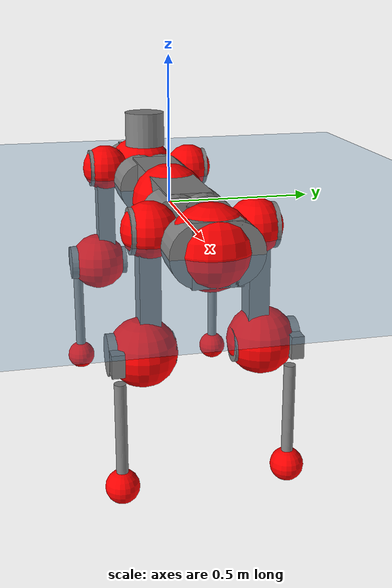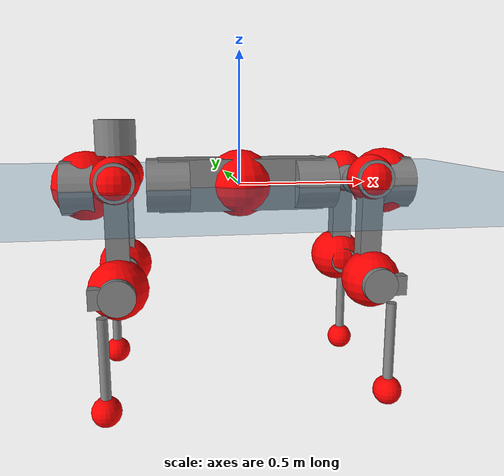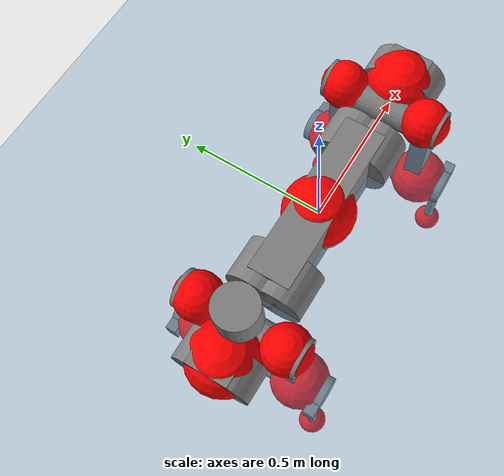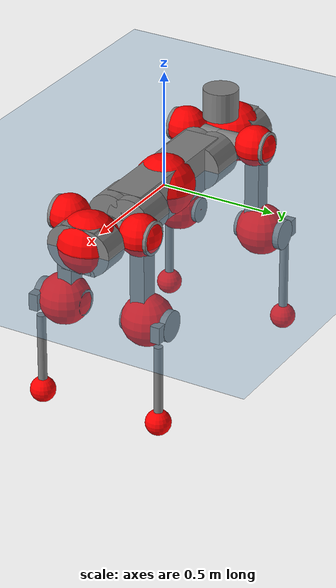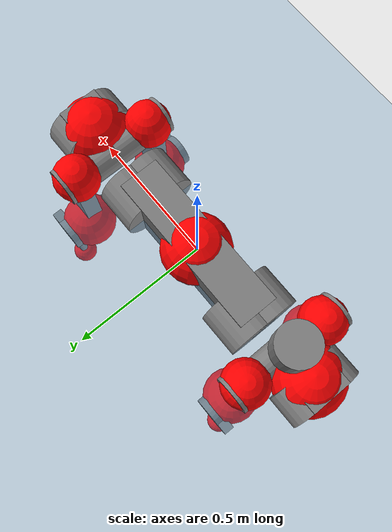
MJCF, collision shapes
<mujoco model="anymal_c">
  <compiler angle="radian" assetdir="assets" balanceinertia="true" inertiafromgeom="false"/>

  <option timestep="0.005" density="1.2" viscosity="2e-05"/>

  <size nkey="1"/>

  <visual>
    <quality shadowsize="8192"/>
    <map shadowclip="0.5"/>
  </visual>

  <default>
    <default class="/">
      <material specular="0" shininess="0.25"/>
      <geom contype="0" conaffinity="0" group="1" solref="-1000 -80"/>
      <site size="0.01 0.005 0.005" group="5"/>
      <general forcelimited="true" forcerange="-80 80" biastype="affine" gainprm="80" biasprm="0 -80 -2"/>
      <default class="anymal_c">
        <joint armature="0.01" damping="0.01" frictionloss="0.1"/>
        <default class="visual">
          <geom type="mesh" group="2"/>
          <default class="visual_zflip"/>
        </default>
        <default class="collision">
          <geom type="cylinder" group="3"/>
          <default class="foot">
            <geom size="0.03 0 0" type="sphere" condim="6" priority="1" friction="0.8 0.02 0.01" solimp="0.015 1 0.03"/>
          </default>
        </default>
      </default>
      <default class="reward_collision_sphere">
        <geom group="5" rgba="1 0 0 1"/>
      </default>
    </default>
  </default>

  <asset>
    <texture type="skybox" colorspace="auto" name="//unnamed_texture_0" builtin="gradient" rgb1="0.95 0.95 0.95" rgb2="0.95 0.95 0.95" width="100" height="600"/>
    <texture type="2d" colorspace="auto" name="texplane" builtin="checker" rgb1="0.345 0.575 0.748" rgb2="0.345 0.575 0.748" markrgb="1 1 1" width="512" height="512"/>
    <texture type="2d" colorspace="linear" name="base" file="base.png"/>
    <texture type="2d" colorspace="linear" name="top_shell" file="top_shell.png"/>
    <texture type="2d" colorspace="linear" name="bottom_shell" file="bottom_shell.png"/>
    <texture type="2d" colorspace="linear" name="remote" file="remote.png"/>
    <texture type="2d" colorspace="linear" name="hatch" file="hatch.png"/>
    <texture type="2d" colorspace="linear" name="handle" file="handle.png"/>
    <texture type="2d" colorspace="linear" name="face" file="face.png"/>
    <texture type="2d" colorspace="linear" name="battery" file="battery.png"/>
    <texture type="2d" colorspace="linear" name="lidar_cage" file="lidar_cage.png"/>
    <texture type="2d" colorspace="linear" name="depth_camera" file="depth_camera.png"/>
    <texture type="2d" colorspace="linear" name="wide_angle_camera" file="wide_angle_camera.png"/>
    <texture type="2d" colorspace="linear" name="lidar" file="lidar.png"/>
    <texture type="2d" colorspace="linear" name="drive" file="drive.png"/>
    <texture type="2d" colorspace="linear" name="hip_l" file="hip_l.png"/>
    <texture type="2d" colorspace="linear" name="shank_l" file="shank_l.png"/>
    <texture type="2d" colorspace="linear" name="foot" file="foot.png"/>
    <texture type="2d" colorspace="linear" name="thigh" file="thigh.png"/>
    <texture type="2d" colorspace="linear" name="shank_r" file="shank_r.png"/>
    <texture type="2d" colorspace="linear" name="hip_r" file="hip_r.png"/>
    <material name="MatPlane" class="/" texture="texplane" texuniform="true" texrepeat="2 2" specular="0.9" shininess="0.5"/>
    <material name="black_plastic" class="/" rgba="0.007 0.007 0.007 1"/>
    <material name="green" class="/" rgba="0.052 0.178 0.033 1"/>
    <material name="red" class="/" rgba="0.178 0.006 0.005 1"/>
    <material name="yellow" class="/" rgba="0.178 0.119 0.006 1"/>
    <material name="lwl" class="/" rgba="0.8 0.8 0.8 1"/>
    <material name="base" class="/" texture="base"/>
    <material name="top_shell" class="/" texture="top_shell"/>
    <material name="bottom_shell" class="/" texture="bottom_shell"/>
    <material name="hip_l" class="/" texture="hip_l"/>
    <material name="thigh" class="/" texture="thigh"/>
    <material name="shank_l" class="/" texture="shank_l"/>
    <material name="foot" class="/" texture="foot"/>
    <material name="hip_r" class="/" texture="hip_r"/>
    <material name="shank" class="/" texture="shank_r"/>
    <material name="hatch" class="/" texture="hatch"/>
    <material name="remote" class="/" texture="remote"/>
    <material name="handle" class="/" texture="handle"/>
    <material name="face" class="/" texture="face"/>
    <material name="depth_camera" class="/" texture="depth_camera"/>
    <material name="wide_angle_camera" class="/" texture="wide_angle_camera"/>
    <material name="battery" class="/" texture="battery"/>
    <material name="lidar_cage" class="/" texture="lidar_cage"/>
    <material name="lidar" class="/" texture="lidar"/>
    <material name="drive" class="/" texture="drive"/>
    <mesh name="base_0" class="/" file="base_0.obj"/>
    <mesh name="base_1" class="/" file="base_1.obj"/>
    <mesh name="base_2" class="/" file="base_2.obj"/>
    <mesh name="base_3" class="/" file="base_3.obj"/>
    <mesh name="base_4" class="/" file="base_4.obj"/>
    <mesh name="base_5" class="/" file="base_5.obj"/>
    <mesh name="top_shell" class="/" file="top_shell.obj"/>
    <mesh name="bottom_shell" class="/" file="bottom_shell.obj"/>
    <mesh name="remote" class="/" file="remote.obj"/>
    <mesh name="handle" class="/" file="handle.obj"/>
    <mesh name="face" class="/" file="face.obj"/>
    <mesh name="wide_angle_camera" class="/" file="wide_angle_camera.obj"/>
    <mesh name="depth_camera" class="/" file="depth_camera.obj"/>
    <mesh name="battery" class="/" file="battery.obj"/>
    <mesh name="lidar_cage" class="/" file="lidar_cage.obj"/>
    <mesh name="lidar" class="/" file="lidar.obj"/>
    <mesh name="drive" class="/" file="drive.obj"/>
    <mesh name="hip_l" class="/" file="hip_l.obj"/>
    <mesh name="thigh" class="/" file="thigh.obj"/>
    <mesh name="shank_l" class="/" file="shank_l.obj"/>
    <mesh name="foot" class="/" file="foot.obj"/>
    <mesh name="hip_r" class="/" file="hip_r.obj"/>
    <mesh name="hatch" class="/" file="hatch.obj"/>
    <mesh name="shank_r" class="/" file="shank_r.obj"/>
  </asset>

  <worldbody>
    <geom name="floor" class="/" size="100 100 0.125" type="plane" group="0" material="MatPlane"/>
    <light name="toplight_shadow" class="/" pos="0 0 5" dir="0.0990148 0.0990148 -0.990148" type="directional" ambient="0.04 0.04 0.04" diffuse="0.55 0.55 0.55" specular="0.12 0.12 0.12"/>
    <light name="toplight_fill" class="/" pos="0 0 5" dir="0.0990148 0.0990148 -0.990148" type="directional" castshadow="false" ambient="0.04 0.04 0.04" diffuse="0.3 0.3 0.3" specular="0.08 0.08 0.08"/>
    <body name="trunk" childclass="anymal_c" pos="0.00214166 0.000591073 0.00352342" quat="0.999999 0.000415375 -0.000309293 0.00094366">
      <inertial pos="0.00775182 0.00612012 0.0660027" quat="0.499896 0.5005 0.500107 0.499497" mass="24.2649" diaginertia="2.02138 0.0523473 0.814815"/>
      <joint name="//unnamed_joint_0" type="free" armature="0" damping="0" frictionloss="0"/>
      <geom name="//unnamed_geom_1" class="visual" material="green" mesh="base_0"/>
      <geom name="//unnamed_geom_2" class="visual" material="yellow" mesh="base_1"/>
      <geom name="//unnamed_geom_3" class="visual" material="red" mesh="base_2"/>
      <geom name="//unnamed_geom_4" class="visual" material="black_plastic" mesh="base_3"/>
      <geom name="//unnamed_geom_5" class="visual" material="lwl" mesh="base_4"/>
      <geom name="//unnamed_geom_6" class="visual" material="base" mesh="base_5"/>
      <geom name="trunk_1" class="collision" size="0.313697 0.0757201 0.0973544" type="box"/>
      <geom name="trunk_2" class="collision" size="0.0973544 0.0784243" pos="0.279786 0.0434537 0" quat="0.707107 0 0.707107 0"/>
      <geom name="trunk_3" class="collision" size="0.0973544 0.0784243" pos="-0.279786 0.0434537 0" quat="0.707107 0 0.707107 0"/>
      <geom name="trunk_4" class="collision" size="0.0973544 0.0784243" pos="0.279786 -0.0434537 0" quat="0.707107 0 0.707107 0"/>
      <geom name="trunk_5" class="collision" size="0.0973544 0.0784243" pos="-0.279786 -0.0434537 0" quat="0.707107 0 0.707107 0"/>
      <geom name="//unnamed_geom_12" class="visual" material="top_shell" mesh="top_shell"/>
      <geom name="//unnamed_geom_13" class="visual" material="bottom_shell" mesh="bottom_shell"/>
      <geom name="//unnamed_geom_14" class="visual" material="remote" mesh="remote"/>
      <geom name="//unnamed_geom_15" class="visual" material="handle" mesh="handle"/>
      <geom name="//unnamed_geom_16" class="visual" pos="0.5332 0 0" quat="1 0 0 0" material="face" mesh="face"/>
      <geom name="trunk_6" class="collision" size="0.0594943 0.0757201 0.0973544" pos="0.603951 0 0" type="box"/>
      <geom name="//unnamed_geom_18" class="collision" size="0.0973544 0.0594943" pos="0.603951 0.0434537 0" quat="0.707107 0 0.707107 0"/>
      <geom name="//unnamed_geom_19" class="collision" size="0.0973544 0.0594943" pos="0.603951 -0.0434537 0" quat="0.707107 0 0.707107 0"/>
      <geom name="//unnamed_geom_20" class="visual" pos="0.593855 0 -0.0394623" quat="0.965926 0 0.258819 0" material="depth_camera" mesh="depth_camera"/>
      <geom name="//unnamed_geom_21" class="visual" pos="0.659908 0 0.02003" material="wide_angle_camera" mesh="wide_angle_camera"/>
      <geom name="//unnamed_geom_22" class="visual_zflip" pos="-0.5332 0 0" quat="0 0 0 1" material="face" mesh="face"/>
      <geom name="trunk_7" class="collision" size="0.0594943 0.0757201 0.0973544" pos="-0.603951 0 0" quat="0 0 0 1" type="box"/>
      <geom name="//unnamed_geom_24" class="collision" size="0.0973544 0.0594943" pos="-0.603951 -0.0434537 0" quat="0 -0.707107 0 0.707107"/>
      <geom name="//unnamed_geom_25" class="collision" size="0.0973544 0.0594943" pos="-0.603951 0.0434537 0" quat="0 -0.707107 0 0.707107"/>
      <geom name="//unnamed_geom_26" class="visual" pos="-0.593855 0 -0.0394623" quat="0 -0.258819 0 0.965926" material="depth_camera" mesh="depth_camera"/>
      <geom name="//unnamed_geom_27" class="visual_zflip" pos="-0.659908 0 0.02003" quat="0 0 0 1" material="wide_angle_camera" mesh="wide_angle_camera"/>
      <geom name="//unnamed_geom_28" class="visual" material="battery" mesh="battery"/>
      <geom name="//unnamed_geom_29" class="visual" pos="0 0.0387319 0.0384767" quat="0.683013 -0.183013 0.183013 0.683013" material="depth_camera" mesh="depth_camera"/>
      <geom name="//unnamed_geom_30" class="visual" pos="0 -0.0387319 0.0384767" quat="0.683013 0.183013 0.183013 -0.683013" material="depth_camera" mesh="depth_camera"/>
      <geom name="//unnamed_geom_31" class="visual" pos="-0.468239 0 0.0983436" quat="1 0 0 0" material="lidar_cage" mesh="lidar_cage"/>
      <geom name="trunk_8" class="collision" size="0.0757201 0.0649029" pos="-0.468239 0 0.178624"/>
      <geom name="//unnamed_geom_33" class="visual" pos="-0.468239 -0.000261498 0.190265" quat="0.707107 0 0 -0.707107" material="lidar" mesh="lidar"/>
      <geom name="//unnamed_geom_34" class="visual" pos="0.385782 0.0648146 -1.23725e-08" quat="0.258819 0.965926 0 0" material="drive" mesh="drive"/>
      <geom name="//unnamed_geom_35" class="visual" pos="0.385782 -0.0648146 1.23725e-08" quat="0.258819 -0.965926 0 0" material="drive" mesh="drive"/>
      <geom name="//unnamed_geom_36" class="visual" pos="-0.385782 0.0648146 1.23725e-08" quat="0 0 0.965926 -0.258819" material="drive" mesh="drive"/>
      <geom name="//unnamed_geom_37" class="visual" pos="-0.385782 -0.0648146 -1.23725e-08" quat="0 0 -0.965926 -0.258819" material="drive" mesh="drive"/>
      <geom name="//unnamed_geom_38" class="visual" pos="0.149219 0 0.0976746" quat="1 0 0 0" material="hatch" mesh="hatch"/>
      <geom name="//unnamed_geom_39" class="reward_collision_sphere" size="0.129806"/>
      <geom name="//unnamed_geom_40" class="reward_collision_sphere" size="0.129806" pos="0.578867 0 0"/>
      <geom name="//unnamed_geom_41" class="reward_collision_sphere" size="0.129806" pos="-0.578867 0 0"/>
      <site name="imu" pos="0.360877 -0.00520474 0.0316585" size="0.0108172"/>
      <camera name="track" pos="0 -1.24153 0" quat="0.707107 0.707107 0 0" mode="trackcom"/>
      <camera name="ego_camera" pos="0.578867 0 -0.0535203" quat="-0.5 -0.5 0.5 0.5"/>
      <body name="LF_HIP" pos="0.388309 0.0645297 -0.00119322" quat="0.258411 0.966035 -6.61883e-05 0.000535692">
        <inertial pos="0.0666186 -0.00811327 -0.013328" quat="-0.131609 0.70509 -0.145282 0.681483" mass="3.72182" diaginertia="0.0219127 0.000438613 0.0138747"/>
        <joint name="LF_HAA" pos="0 0 0" axis="0.999789 0.0205522 -0.00054503" range="-0.761769 0.449622" armature="0.00684595" damping="0.0435404" frictionloss="0.0981489"/>
        <geom name="//unnamed_geom_42" class="visual" pos="0 -0.000727817 0.000119543" quat="0.258819 -0.965926 0 0" material="hip_l" mesh="hip_l"/>
        <geom name="//unnamed_geom_43" class="visual" pos="0.0770536 -0.0848579 -0.0542979" quat="0.183013 -0.683013 0.683013 0.183013" material="drive" mesh="drive"/>
        <geom name="//unnamed_geom_44" class="collision" size="0.0540858 0.0757201" pos="0.0770536 -0.00742425 -0.00923894" quat="-0.353553 -0.612372 0.612372 -0.353553"/>
        <body name="LF_THIGH" pos="0.0779456 -0.0472046 -0.0560435" quat="0.183895 -0.683584 0.682369 0.182395">
          <inertial pos="0.0392221 0.00017083 -0.335306" quat="0.993387 -0.00294982 -0.0822051 0.0801015" mass="3.85336" diaginertia="0.118132 0.00282157 0.0179481"/>
          <joint name="LF_HFE" pos="0 0 0" axis="0.99918 0.0296948 -0.0275122" stiffness="0.00523163" range="-3.16919 3.17762" armature="0.011768" damping="0.0037043" frictionloss="0.140919"/>
          <geom name="//unnamed_geom_45" class="visual" pos="0.0132429 2.08677e-05 0" quat="0.707107 0 0 -0.707107" material="thigh" mesh="thigh"/>
          <geom name="//unnamed_geom_46" class="collision" size="0.0703115 0.0432686" pos="0.0514548 0 0" quat="0.5 0.5 -0.5 -0.5"/>
          <geom name="//unnamed_geom_47" class="collision" size="0.0405643 0.0324515 0.152861" pos="0.0385911 0 -0.189079" quat="0.707107 0 0 -0.707107" type="box"/>
          <geom name="//unnamed_geom_48" class="visual" pos="0.129023 0 -0.381332" quat="1 0 0 0" material="drive" mesh="drive"/>
          <geom name="//unnamed_geom_49" class="collision" size="0.0540858 0.0757201" pos="0.038977 0 -0.381332" quat="0.707107 0 0.707107 0"/>
          <geom name="//unnamed_geom_50" class="reward_collision_sphere" size="0.0865372" pos="0.0321593 0 0"/>
          <body name="LF_SHANK" pos="0.123935 0.0053195 -0.373223" quat="0.999997 -0.00220698 0.000812147 -0.000766078">
            <inertial pos="0.00574416 -0.0380491 -0.109094" quat="0.993407 -0.112789 -0.00113525 -0.0204751" mass="0.745029" diaginertia="0.0366805 0.00085839 0.00481415"/>
            <joint name="LF_KFE" pos="0 0 0" axis="0.999999 7.95822e-06 -0.00119586" range="-3.07797 3.13486" armature="0.0101544" damping="0.0329328" frictionloss="0.0931665"/>
            <geom name="//unnamed_geom_51" class="visual" pos="0.00431822 0.0230249 0" quat="0.707107 0 0 -0.707107" material="shank_l" mesh="shank_l"/>
            <geom name="LF_kfe_act" class="collision" size="0.0649029 0.0216343" pos="0.0257274 0 0" quat="0.5 0.5 -0.5 -0.5"/>
            <geom name="//unnamed_geom_53" class="collision" size="0.0621975 0.0365079 0.0205526" pos="0.0257274 -0.0356935 0" quat="0.5 0.5 -0.5 -0.5" type="box"/>
            <geom name="//unnamed_geom_54" class="visual" pos="0.0167861 -0.0471765 -0.452206" quat="0.382683 0 0 -0.92388" material="foot" mesh="foot"/>
            <geom name="LF_calf" class="collision" size="0.01893 0.152794" pos="0.0167871 -0.0545965 -0.226103" quat="0.707107 0 0 -0.707107"/>
            <geom name="LF_foot" class="foot" size="0.0295124" pos="0.0167871 -0.0545965 -0.422101" quat="0.707107 0 0 -0.707107"/>
            <geom name="//unnamed_geom_57" class="reward_collision_sphere" size="0.108172" pos="-0.0643185 0 0"/>
            <geom name="//unnamed_geom_58" class="reward_collision_sphere" size="0.0540858" pos="0.0167871 -0.0545965 -0.422101"/>
            <site name="LF_foot" class="foot" pos="0.0167871 -0.0545965 -0.422101" quat="0.707107 0 0 -0.707107" size="0.0108172"/>
          </body>
        </body>
      </body>
      <body name="RF_HIP" pos="0.388873 -0.0655037 0.00211097" quat="0.259169 -0.965832 -0.000163897 0.000737089">
        <inertial pos="0.0671205 0.00759007 -0.00907404" quat="0.132242 0.681755 0.127925 0.708065" mass="3.34808" diaginertia="0.0201308 0.000427001 0.0135259"/>
        <joint name="RF_HAA" pos="0 0 0" axis="1 -0.000461584 -0.000508874" range="-0.360692 0.75675" armature="0.0138662" damping="0.00983831" frictionloss="0.141588"/>
        <geom name="//unnamed_geom_59" class="visual" pos="0 0.000727811 0.000119543" quat="0.258819 0.965926 0 0" material="hip_r" mesh="hip_r"/>
        <geom name="//unnamed_geom_60" class="visual" pos="0.0770536 0.0848579 -0.0542979" quat="0.183013 0.683013 0.683013 -0.183013" material="drive" mesh="drive"/>
        <geom name="//unnamed_geom_61" class="collision" size="0.0540858 0.0757201" pos="0.0770536 0.00742425 -0.00923894" quat="-0.353553 0.612372 0.612372 0.353553"/>
        <body name="RF_THIGH" pos="0.0779008 0.0382205 -0.0550861" quat="0.18319 0.683205 0.682862 -0.182682">
          <inertial pos="0.0396607 0.00214003 -0.331138" quat="0.994989 -0.0219288 -0.0614849 0.0757372" mass="4.46472" diaginertia="0.115433 0.00280464 0.0186911"/>
          <joint name="RF_HFE" pos="0 0 0" axis="0.999771 0.0152697 -0.01499" stiffness="0.00633171" range="-3.30055 3.07769" armature="0.0107456" damping="0.0266729" frictionloss="0.0586448"/>
          <geom name="//unnamed_geom_62" class="visual" pos="0.0132429 2.08677e-05 0" quat="0.707107 0 0 -0.707107" material="thigh" mesh="thigh"/>
          <geom name="//unnamed_geom_63" class="collision" size="0.0703115 0.0432686" pos="0.0514548 0 0" quat="0.5 0.5 0.5 0.5"/>
          <geom name="//unnamed_geom_64" class="collision" size="0.0405643 0.0324515 0.152861" pos="0.0385911 0 -0.189079" quat="0.707107 0 0 0.707107" type="box"/>
          <geom name="//unnamed_geom_65" class="visual" pos="0.129023 0 -0.381332" quat="1 0 0 0" material="drive" mesh="drive"/>
          <geom name="//unnamed_geom_66" class="collision" size="0.0540858 0.0757201" pos="0.038977 0 -0.381332" quat="0.707107 0 0.707107 0"/>
          <geom name="//unnamed_geom_67" class="reward_collision_sphere" size="0.0865372" pos="0.0321593 0 0"/>
          <body name="RF_SHANK" pos="0.123116 0.006975 -0.381306" quat="0.999999 0.00100714 0.00026959 -0.000320578">
            <inertial pos="0.00705272 0.036175 -0.11476" quat="0.993182 0.114819 -0.00908336 0.0179974" mass="0.732182" diaginertia="0.0396609 0.000911166 0.00495819"/>
            <joint name="RF_KFE" pos="0 0 0" axis="0.999987 0.00362972 0.003549" stiffness="0.00242007" range="-3.09255 3.08234" armature="0.0105268" damping="0.0188818" frictionloss="0.149049"/>
            <geom name="//unnamed_geom_68" class="visual" pos="0.00431819 -0.0230249 0" quat="0.707107 0 0 0.707107" material="shank" mesh="shank_r"/>
            <geom name="RF_kfe_act" class="collision" size="0.0649029 0.0216343" pos="0.0257274 0 0" quat="0.5 0.5 0.5 0.5"/>
            <geom name="//unnamed_geom_70" class="collision" size="0.0621975 0.0365079 0.0205526" pos="0.0257274 0.0356935 0" quat="0.5 0.5 0.5 0.5" type="box"/>
            <geom name="//unnamed_geom_71" class="visual" pos="0.0167882 0.0471765 -0.452206" quat="0.382683 0 0 0.92388" material="foot" mesh="foot"/>
            <geom name="RF_calf" class="collision" size="0.01893 0.152794" pos="0.0167871 0.0545965 -0.226103" quat="0.707107 0 0 0.707107"/>
            <geom name="RF_foot" class="foot" size="0.0433686" pos="0.0167871 0.0545965 -0.422101" quat="0.707107 0 0 0.707107"/>
            <geom name="//unnamed_geom_74" class="reward_collision_sphere" size="0.108172" pos="-0.0643185 0 0"/>
            <geom name="//unnamed_geom_75" class="reward_collision_sphere" size="0.0540858" pos="0.0167871 0.0545965 -0.422101"/>
            <site name="RF_foot" class="foot" pos="0.0167871 0.0545965 -0.422101" quat="0.707107 0 0 0.707107" size="0.0108172"/>
          </body>
        </body>
      </body>
      <body name="LH_HIP" pos="-0.377849 0.0642224 0.000915394" quat="0.000356392 -7.94415e-05 0.966044 -0.258378">
        <inertial pos="0.0721491 0.00292711 -0.00912441" quat="0.130778 0.682947 0.138096 0.705273" mass="3.56615" diaginertia="0.0219922 0.000438349 0.0162292"/>
        <joint name="LH_HAA" pos="0 0 0" axis="0.999999 -0.00153751 0.000189256" range="-0.492799 0.903553" armature="0.0145476" damping="0.0150204" frictionloss="0.0987371"/>
        <geom name="//unnamed_geom_76" class="visual" pos="0 0.000727811 0.000119543" quat="-0.258819 -0.965926 0 0" material="hip_r" mesh="hip_r"/>
        <geom name="//unnamed_geom_77" class="visual" pos="0.0770536 0.0848579 -0.0542979" quat="0.183013 0.683013 0.683013 -0.183013" material="drive" mesh="drive"/>
        <geom name="//unnamed_geom_78" class="collision" size="0.0540858 0.0757201" pos="0.0770536 0.00742425 -0.00923894" quat="-0.353553 0.612372 0.612372 0.353553"/>
        <body name="LH_THIGH" pos="0.0798473 0.053996 -0.0577169" quat="0.183017 0.683001 0.683028 -0.182996">
          <inertial pos="0.0396441 -0.00498882 -0.330569" quat="0.993829 -0.00832297 -0.0714984 0.0844008" mass="3.92576" diaginertia="0.107869 0.00285368 0.0181899"/>
          <joint name="LH_HFE" pos="0 0 0" axis="0.999665 -0.0169535 -0.0195734" range="-3.14067 3.09394" armature="0.0115714" damping="0.0114895" frictionloss="0.10928"/>
          <geom name="//unnamed_geom_79" class="visual" pos="0.0132429 2.08677e-05 0" quat="0.707107 0 0 -0.707107" material="thigh" mesh="thigh"/>
          <geom name="//unnamed_geom_80" class="collision" size="0.0703115 0.0432686" pos="0.0514548 0 0" quat="0.5 0.5 -0.5 -0.5"/>
          <geom name="//unnamed_geom_81" class="collision" size="0.0405643 0.0324515 0.152861" pos="0.0385911 0 -0.189079" quat="0.707107 0 0 -0.707107" type="box"/>
          <geom name="//unnamed_geom_82" class="visual" pos="0.129023 0 -0.381332" quat="1 0 0 0" material="drive" mesh="drive"/>
          <geom name="//unnamed_geom_83" class="collision" size="0.0540858 0.0757201" pos="0.038977 0 -0.381332" quat="0.707107 0 0.707107 0"/>
          <geom name="//unnamed_geom_84" class="reward_collision_sphere" size="0.0865372" pos="0.0321593 0 0"/>
          <body name="LH_SHANK" pos="0.132223 0.000873798 -0.38138" quat="1 9.23956e-05 6.23922e-05 5.68402e-05">
            <inertial pos="0.00708705 0.0383036 -0.108475" quat="0.99333 0.1116 0.0275381 -0.00910167" mass="0.746498" diaginertia="0.0367725 0.000875951 0.00530519"/>
            <joint name="LH_KFE" pos="0 0 0" axis="0.999775 -0.0107076 0.0183159" stiffness="0.00587863" range="-3.15673 3.13985" armature="0.0130055" damping="0.00293008" frictionloss="0.0917388"/>
            <geom name="//unnamed_geom_85" class="visual" pos="0.00431819 -0.0230249 0" quat="-0.707107 0 0 -0.707107" material="shank" mesh="shank_r"/>
            <geom name="LH_kfe_act" class="collision" size="0.0649029 0.0216343" pos="0.0257274 0 0" quat="0.5 0.5 -0.5 -0.5"/>
            <geom name="//unnamed_geom_87" class="collision" size="0.0621975 0.0365079 0.0205526" pos="0.0257274 0.0356935 0" quat="0.5 0.5 -0.5 -0.5" type="box"/>
            <geom name="//unnamed_geom_88" class="visual" pos="0.0167882 0.0471765 -0.452206" quat="-0.382683 0 0 -0.92388" material="foot" mesh="foot"/>
            <geom name="LH_calf" class="collision" size="0.01893 0.152794" pos="0.0167871 0.0545965 -0.226103" quat="0.707107 0 0 -0.707107"/>
            <geom name="LH_foot" class="foot" size="0.0190427" pos="0.0167871 0.0545965 -0.422101" quat="0.707107 0 0 -0.707107"/>
            <geom name="//unnamed_geom_91" class="reward_collision_sphere" size="0.108172" pos="-0.0643185 0 0"/>
            <geom name="//unnamed_geom_92" class="reward_collision_sphere" size="0.0540858" pos="0.0167871 0.0545965 -0.422101"/>
            <site name="LH_foot" class="foot" pos="0.0167871 0.0545965 -0.422101" quat="0.707107 0 0 -0.707107" size="0.0108172"/>
          </body>
        </body>
      </body>
      <body name="RH_HIP" pos="-0.384816 -0.0578363 0.000701917" quat="-0.00101617 0.000452594 -0.965441 -0.260619">
        <inertial pos="0.0796888 -0.0105999 -0.01683" quat="-0.129612 0.712442 -0.132052 0.676896" mass="3.56846" diaginertia="0.0210477 0.000463163 0.0157183"/>
        <joint name="RH_HAA" pos="0 0 0" axis="0.999991 -0.000506842 0.00423601" stiffness="0.0037209" range="-0.613282 0.332248" armature="0.0113325" damping="0.0243992" frictionloss="0.107444"/>
        <geom name="//unnamed_geom_93" class="visual" pos="0 -0.000727817 0.000119543" quat="-0.258819 0.965926 0 0" material="hip_l" mesh="hip_l"/>
        <geom name="//unnamed_geom_94" class="visual" pos="0.0770536 -0.0848579 -0.0542979" quat="-0.183013 0.683013 -0.683013 -0.183013" material="drive" mesh="drive"/>
        <geom name="//unnamed_geom_95" class="collision" size="0.0540858 0.0757201" pos="0.0770536 -0.00742425 -0.00923894" quat="0.353553 0.612372 -0.612372 0.353553"/>
        <body name="RH_THIGH" pos="0.0795478 -0.0436654 -0.0627491" quat="-0.182937 0.683098 -0.683041 -0.182666">
          <inertial pos="0.0359652 -0.0016448 -0.326926" quat="0.99322 -0.00610845 -0.0798306 0.084289" mass="4.72634" diaginertia="0.12641 0.00311858 0.0202835"/>
          <joint name="RH_HFE" pos="0 0 0" axis="0.9997 0.0151822 0.0192066" stiffness="0.00141138" range="-3.10331 3.15034" armature="0.0109904" damping="0.00193337" frictionloss="0.108445"/>
          <geom name="//unnamed_geom_96" class="visual" pos="0.0132429 2.08677e-05 0" quat="0.707107 0 0 -0.707107" material="thigh" mesh="thigh"/>
          <geom name="//unnamed_geom_97" class="collision" size="0.0703115 0.0432686" pos="0.0514548 0 0" quat="0.5 0.5 0.5 0.5"/>
          <geom name="//unnamed_geom_98" class="collision" size="0.0405643 0.0324515 0.152861" pos="0.0385911 0 -0.189079" quat="0.707107 0 0 0.707107" type="box"/>
          <geom name="//unnamed_geom_99" class="visual" pos="0.129023 0 -0.381332" quat="1 0 0 0" material="drive" mesh="drive"/>
          <geom name="//unnamed_geom_100" class="collision" size="0.0540858 0.0757201" pos="0.038977 0 -0.381332" quat="0.707107 0 0.707107 0"/>
          <geom name="//unnamed_geom_101" class="reward_collision_sphere" size="0.0865372" pos="0.0321593 0 0"/>
          <body name="RH_SHANK" pos="0.135324 -0.00171237 -0.379664" quat="1 0.000618477 8.02644e-05 0.000420568">
            <inertial pos="0.00734087 -0.0379021 -0.105937" quat="0.993521 -0.107255 -0.0266325 -0.026528" mass="0.784678" diaginertia="0.0376596 0.000817349 0.00503143"/>
            <joint name="RH_KFE" pos="0 0 0" axis="0.999483 0.0321047 -0.00184913" range="-3.15855 3.12641" armature="0.0149297" damping="0.0126673" frictionloss="0.108064"/>
            <geom name="//unnamed_geom_102" class="visual" pos="0.00431822 0.0230249 0" quat="0.707107 0 0 -0.707107" material="shank_l" mesh="shank_l"/>
            <geom name="RH_kfe_act" class="collision" size="0.0649029 0.0216343" pos="0.0257274 0 0" quat="0.5 0.5 0.5 0.5"/>
            <geom name="//unnamed_geom_104" class="collision" size="0.0621975 0.0365079 0.0205526" pos="0.0257274 -0.0356935 0" quat="0.5 0.5 0.5 0.5" type="box"/>
            <geom name="//unnamed_geom_105" class="visual" pos="0.0167861 -0.0471765 -0.452206" quat="0.382683 0 0 -0.92388" material="foot" mesh="foot"/>
            <geom name="RH_calf" class="collision" size="0.01893 0.152794" pos="0.0167871 -0.0545965 -0.226103" quat="0.707107 0 0 0.707107"/>
            <geom name="RH_foot" class="foot" size="0.036057" pos="0.0167871 -0.0545965 -0.422101" quat="0.707107 0 0 0.707107"/>
            <geom name="//unnamed_geom_108" class="reward_collision_sphere" size="0.108172" pos="-0.0643185 0 0"/>
            <geom name="//unnamed_geom_109" class="reward_collision_sphere" size="0.0540858" pos="0.0167871 -0.0545965 -0.422101"/>
            <site name="RH_foot" class="foot" pos="0.0167871 -0.0545965 -0.422101" quat="0.707107 0 0 0.707107" size="0.0108172"/>
          </body>
        </body>
      </body>
    </body>
  </worldbody>

  <contact>
    <pair class="/" geom1="floor" geom2="LF_foot" name="//unnamed_contact_0"/>
    <pair class="/" geom1="floor" geom2="RF_foot" name="//unnamed_contact_1"/>
    <pair class="/" geom1="floor" geom2="LH_foot" name="//unnamed_contact_2"/>
    <pair class="/" geom1="floor" geom2="RH_foot" name="//unnamed_contact_3"/>
  </contact>

  <actuator>
    <general name="LF_HAA" class="/" joint="LF_HAA" forcerange="-81.0604 81.0604" gainprm="59.9981" biasprm="0 -59.9981 -2.1999"/>
    <general name="LF_HFE" class="/" joint="LF_HFE" forcerange="-93.33 93.33" gainprm="59.9981" biasprm="0 -59.9981 -2.1999"/>
    <general name="LF_KFE" class="/" joint="LF_KFE" forcerange="-86.1074 86.1074" gainprm="59.9981" biasprm="0 -59.9981 -2.1999"/>
    <general name="RF_HAA" class="/" joint="RF_HAA" forcerange="-95.1987 95.1987" gainprm="59.9981" biasprm="0 -59.9981 -2.1999"/>
    <general name="RF_HFE" class="/" joint="RF_HFE" forcerange="-84.2023 84.2023" gainprm="59.9981" biasprm="0 -59.9981 -2.1999"/>
    <general name="RF_KFE" class="/" joint="RF_KFE" forcerange="-105.628 105.628" gainprm="59.9981" biasprm="0 -59.9981 -2.1999"/>
    <general name="LH_HAA" class="/" joint="LH_HAA" forcerange="-86.9263 86.9263" gainprm="59.9981" biasprm="0 -59.9981 -2.1999"/>
    <general name="LH_HFE" class="/" joint="LH_HFE" forcerange="-106.365 106.365" gainprm="59.9981" biasprm="0 -59.9981 -2.1999"/>
    <general name="LH_KFE" class="/" joint="LH_KFE" forcerange="-85.8457 85.8457" gainprm="59.9981" biasprm="0 -59.9981 -2.1999"/>
    <general name="RH_HAA" class="/" joint="RH_HAA" forcerange="-85.1859 85.1859" gainprm="59.9981" biasprm="0 -59.9981 -2.1999"/>
    <general name="RH_HFE" class="/" joint="RH_HFE" forcerange="-110.831 110.831" gainprm="59.9981" biasprm="0 -59.9981 -2.1999"/>
    <general name="RH_KFE" class="/" joint="RH_KFE" forcerange="-69.5854 69.5854" gainprm="59.9981" biasprm="0 -59.9981 -2.1999"/>
  </actuator>

  <sensor>
    <gyro site="imu" name="imu_angular_velocity"/>
    <velocimeter site="imu" name="imu_linear_velocity"/>
    <framelinvel objtype="site" objname="LF_foot" name="LF_foot_global_linear_velocity"/>
    <framelinvel objtype="site" objname="RF_foot" name="RF_foot_global_linear_velocity"/>
    <framelinvel objtype="site" objname="LH_foot" name="LH_foot_global_linear_velocity"/>
    <framelinvel objtype="site" objname="RH_foot" name="RH_foot_global_linear_velocity"/>
  </sensor>

  <keyframe>
    <key name="home" qpos="0 0 0.55 1 0 0 0 0 0.4 -0.8 0 -0.4 0.8 0 -0.4 0.8 0 0.4 -0.8"/>
  </keyframe>
</mujoco>
